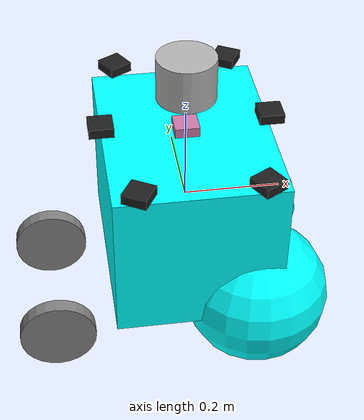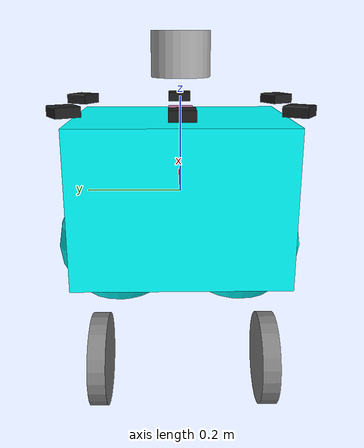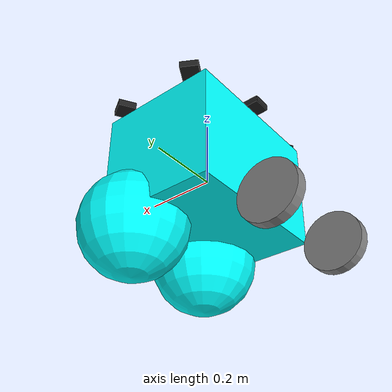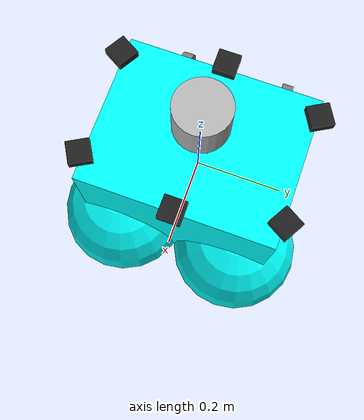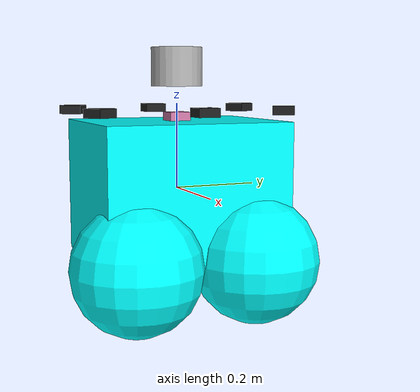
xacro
<?xml version="1.0"?>

<robot name="sam_bot" xmlns:xacro="http://ros.org/wiki/xacro">

  <!-- Define robot constants -->

  <xacro:property name="base_width" value="0.44"/>
  <xacro:property name="base_length" value="0.34"/>
  <xacro:property name="base_height" value="0.32"/>

  <xacro:property name="wheel_radius" value="0.08"/>
  <xacro:property name="wheel_width" value="0.03"/>
  <xacro:property name="wheel_ygap" value="0.075"/>
  <xacro:property name="wheel_zoff" value="0.23"/>
  <xacro:property name="wheel_xoff" value="0.29"/>

  <xacro:property name="caster_xoff" value="0.13"/>

  <!-- Define some commonly used intertial properties  -->
  <xacro:macro name="box_inertia" params="m w h d">
    <inertial>
      <origin xyz="0 0 0" rpy="${pi/2} 0 ${pi/2}"/>
      <mass value="${m}"/>
      <inertia ixx="${(m/12) * (h*h + d*d)}" ixy="0.0" ixz="0.0" iyy="${(m/12) * (w*w + d*d)}" iyz="0.0" izz="${(m/12) * (w*w + h*h)}"/>
    </inertial>
  </xacro:macro>

  <xacro:macro name="cylinder_inertia" params="m r h">
    <inertial>
      <origin xyz="0 0 0" rpy="${pi/2} 0 0" />
      <mass value="${m}"/>
      <inertia ixx="${(m/12) * (3*r*r + h*h)}" ixy = "0" ixz = "0" iyy="${(m/12) * (3*r*r + h*h)}" iyz = "0" izz="${(m/2) * (r*r)}"/>
    </inertial>
  </xacro:macro>

  <xacro:macro name="sphere_inertia" params="m r">
    <inertial>
      <mass value="${m}"/>
      <inertia ixx="${(2/5) * m * (r*r)}" ixy="0.0" ixz="0.0" iyy="${(2/5) * m * (r*r)}" iyz="0.0" izz="${(2/5) * m * (r*r)}"/>
    </inertial>
  </xacro:macro>

  <!-- Robot Base -->
  <link name="base_link">
    <visual>
      <geometry>
        <box size="${base_length} ${base_width} ${base_height}"/>
      </geometry>
      <origin xyz="0 0 0"/>
      <material name="Cyan">
        <color rgba="0 1.0 1.0 1.0"/>
      </material>
    </visual>

    <collision>
      <geometry>
        <box size="${base_length} ${base_width} ${base_height}"/>
      </geometry>
      <origin xyz="0 0 0"/>
    </collision>

    <xacro:box_inertia m="1" w="${base_width}" d="${base_length}" h="${base_height}"/>
  </link>

   <!-- Robot Footprint -->
  <link name="base_footprint">
  	<xacro:box_inertia m="0" w="0" d="0" h="0"/>
  </link>

  <joint name="base_joint" type="fixed">
    <parent link="base_link"/>
    <child link="base_footprint"/>
    <origin xyz="0.0 0.0 ${-(wheel_radius+wheel_zoff)}" rpy="0 0 0"/>
  </joint>

  <!-- Wheels -->
  <xacro:macro name="wheel" params="prefix x_reflect y_reflect">
    <link name="${prefix}_link">
      <visual>
        <origin xyz="0 0 0" rpy="${pi/2} 0 0"/>
        <geometry>
            <cylinder radius="${wheel_radius}" length="${wheel_width}"/>
        </geometry>
        <material name="Gray">
          <color rgba="0.5 0.5 0.5 1.0"/>
        </material>
      </visual>

      <collision>
        <origin xyz="0 0 0" rpy="${pi/2} 0 0"/>
        <geometry>
          <cylinder radius="${wheel_radius}" length="${wheel_width}"/>
        </geometry>
      </collision>

      <xacro:cylinder_inertia m="1.5" r="${wheel_radius}" h="${wheel_width}"/>
    </link>

    <joint name="${prefix}_joint" type="continuous">
      <parent link="base_link"/>
      <child link="${prefix}_link"/>
      <origin xyz="${x_reflect*wheel_xoff} ${y_reflect*(base_width/2-wheel_ygap)} ${-wheel_zoff}" rpy="0 0 0"/>
      <axis xyz="0 1 0"/>
    </joint>
  </xacro:macro>

  <xacro:wheel prefix="left_wheel" x_reflect="-1" y_reflect="1" />
  <xacro:wheel prefix="right_wheel" x_reflect="-1" y_reflect="-1" />

    <!-- caster -->

    <link name="left_front_caster">
      <visual>
        <geometry>
          <sphere radius="${(wheel_radius + wheel_zoff - (base_height / 2))}"/>
        </geometry>
        <material name="Cyan">
          <color rgba="0 1.0 1.0 1.0"/>
        </material>
      </visual>

      <collision>
        <origin xyz="0 0 0" rpy="0 0 0"/>
        <geometry>
          <sphere radius="${(wheel_radius + wheel_zoff - (base_height / 2))}"/>
        </geometry>
      </collision>

      <xacro:sphere_inertia m="0.5" r="${(wheel_radius + wheel_zoff - (base_height / 2))}"/>
    </link>

    <!-- 右前万向轮 -->
    <link name="right_front_caster">
      <visual>
        <geometry>
          <sphere radius="${(wheel_radius + wheel_zoff - (base_height / 2))}"/>
        </geometry>
        <material name="Cyan">
          <color rgba="0 1.0 1.0 1.0"/>
        </material>
      </visual>

      <collision>
        <origin xyz="0 0 0" rpy="0 0 0"/>
        <geometry>
          <sphere radius="${(wheel_radius + wheel_zoff - (base_height / 2))}"/>
        </geometry>
      </collision>

      <xacro:sphere_inertia m="0.5" r="${(wheel_radius + wheel_zoff - (base_height / 2))}"/>
    </link>

    <!-- 前万向轮关节 -->
    <joint name="left_front_caster_joint" type="fixed">
      <parent link="base_link"/>
      <child link="left_front_caster"/>
      <origin xyz="${caster_xoff} ${base_width / 2 - wheel_ygap} ${-(base_height / 2)}" rpy="0 0 0"/>
      <axis xyz="0 1 0"/>  <!-- 旋转轴 -->
    </joint>

    <joint name="right_front_caster_joint" type="fixed">
      <parent link="base_link"/>
      <child link="right_front_caster"/>
      <origin xyz="${caster_xoff} ${-(base_width / 2 - wheel_ygap)} ${-(base_height / 2)}" rpy="0 0 0"/>
      <axis xyz="0 1 0"/>  <!-- 旋转轴 -->
    </joint>

  <link name="imu_link">
    <visual>
      <geometry>
        <box size="0.05 0.05 0.02"/>
      </geometry>
    </visual>

    <collision>
      <geometry>
        <box size="0.05 0.05 0.02"/>
      </geometry>
    </collision>

    <xacro:box_inertia m="0.05" w="0.05" d="0.05" h="0.02"/>
  </link>

  <joint name="imu_joint" type="fixed">
    <parent link="base_link"/>
    <child link="imu_link"/>
    <origin xyz="0 0 0.17" rpy="0 0 0"/>
  </joint>

  <gazebo reference="imu_link">
  <sensor name="imu_sensor" type="imu">
   <plugin filename="libgazebo_ros_imu_sensor.so" name="imu_plugin">
      <ros>
        <namespace>/demo</namespace>
        <remapping>~/out:=imu</remapping>
      </ros>
      <initial_orientation_as_reference>false</initial_orientation_as_reference>
    </plugin>
    <always_on>true</always_on>
    <update_rate>100</update_rate>
    <visualize>true</visualize>
    <imu>
      <angular_velocity>
        <x>
          <noise type="gaussian">
            <mean>0.0</mean>      <bias_stddev>0.001</bias_stddev>
            <stddev>2e-4</stddev>
            <bias_mean>0.0000075</bias_mean>
            <bias_stddev>0.0000008</bias_stddev>
          </noise>
        </x>
        <y>
          <noise type="gaussian">
            <mean>0.0</mean>
            <stddev>2e-4</stddev>
            <bias_mean>0.0000075</bias_mean>
            <bias_stddev>0.0000008</bias_stddev>
          </noise>
        </y>
        <z>
          <noise type="gaussian">
            <mean>0.0</mean>
            <stddev>2e-4</stddev>
            <bias_mean>0.0000075</bias_mean>
            <bias_stddev>0.0000008</bias_stddev>
          </noise>
        </z>
      </angular_velocity>
      <linear_acceleration>
        <x>
          <noise type="gaussian">
            <mean>0.0</mean>
            <stddev>1.7e-2</stddev>
            <bias_mean>0.1</bias_mean>
            <bias_stddev>0.001</bias_stddev>
          </noise>
        </x>
        <y>
          <noise type="gaussian">
            <mean>0.0</mean>
            <stddev>1.7e-2</stddev>
            <bias_mean>0.1</bias_mean>
            <bias_stddev>0.001</bias_stddev>
          </noise>
        </y>
        <z>
          <noise type="gaussian">
            <mean>0.0</mean>
            <stddev>1.7e-2</stddev>
            <bias_mean>0.1</bias_mean>
          </noise>
        </z>
      </linear_acceleration>
    </imu>
  </sensor>
</gazebo>

 <link name="lidar_link">
    <inertial>
      <origin xyz="0 0 0" rpy="0 0 0"/>
      <mass value="0.125"/>
      <inertia ixx="0.001"  ixy="0"  ixz="0" iyy="0.001" iyz="0" izz="0.001" />
    </inertial>

    <collision>
      <origin xyz="0 0 0" rpy="0 0 0"/>
      <geometry>
         <cylinder radius="0.06" length="0.09"/>
      </geometry>
    </collision>

    <visual>
      <origin xyz="0 0 0" rpy="0 0 0"/>
      <geometry>
         <cylinder radius="0.06" length="0.09"/>
      </geometry>
    </visual>
  </link>

  <joint name="lidar_joint" type="fixed">
    <parent link="base_link"/>
    <child link="lidar_link"/>
    <origin xyz="0 0 0.285" rpy="0 0 0"/>
  </joint>

  <gazebo reference="lidar_link">
    <sensor name="lidar" type="ray">
      <always_on>true</always_on>
      <visualize>true</visualize>
      <update_rate>5</update_rate>
      <ray>
        <scan>
          <horizontal>
            <samples>360</samples>
            <resolution>1.000000</resolution>
            <min_angle>0.000000</min_angle>
            <max_angle>6.280000</max_angle>
          </horizontal>
        </scan>
        <range>
          <min>0.120000</min>
          <max>3.5</max>
          <resolution>0.015000</resolution>
        </range>
        <noise>
          <type>gaussian</type>
          <mean>0.0</mean>
          <stddev>0.01</stddev>
        </noise>
      </ray>
      <plugin name="scan" filename="libgazebo_ros_ray_sensor.so">
        <ros>
          <remapping>~/out:=scan</remapping>
        </ros>
        <output_type>sensor_msgs/LaserScan</output_type>
        <frame_name>lidar_link</frame_name>
      </plugin>
    </sensor>
  </gazebo>

  <!-- Camera Front -->
  <link name="CAM_FRONT">
    <visual>
      <geometry>
        <box size="0.05 0.05 0.02"/>
      </geometry>
      <material name="black"/>
    </visual>
    <collision>
      <geometry>
        <box size="0.05 0.05 0.02"/>
      </geometry>
    </collision>
    <inertial>
      <mass value="0.05"/>
      <inertia ixx="0.0001" ixy="0.0" ixz="0.0" iyy="0.0001" iyz="0.0" izz="0.0001"/>
    </inertial>
  </link>
  <joint name="CAM_FRONT_joint" type="fixed">
    <parent link="base_link"/>
    <child link="CAM_FRONT"/>
    <origin xyz="0.17 0.0 0.185" rpy="0 0 0"/>
  </joint>

  <!-- Camera Front Right -->
  <link name="CAM_FRONT_LEFT">
    <visual>
      <geometry>
        <box size="0.05 0.05 0.02"/>
      </geometry>
      <material name="black"/>
    </visual>
    <collision>
      <geometry>
        <box size="0.05 0.05 0.02"/>
      </geometry>
    </collision>
    <inertial>
      <mass value="0.05"/>
      <inertia ixx="0.0001" ixy="0.0" ixz="0.0" iyy="0.0001" iyz="0.0" izz="0.0001"/>
    </inertial>
  </link>
  <joint name="CAM_FRONT_LEFT_joint" type="fixed">
    <parent link="base_link"/>
    <child link="CAM_FRONT_LEFT"/>
    <origin xyz="0.12 0.22 0.185" rpy="0 0 1.0472"/>
  </joint>

  <!-- Camera Back Right -->
  <link name="CAM_BACK_LEFT">
    <visual>
      <geometry>
        <box size="0.05 0.05 0.02"/>
      </geometry>
      <material name="black"/>
    </visual>
    <collision>
      <geometry>
        <box size="0.05 0.05 0.02"/>
      </geometry>
    </collision>
    <inertial>
      <mass value="0.05"/>
      <inertia ixx="0.0001" ixy="0.0" ixz="0.0" iyy="0.0001" iyz="0.0" izz="0.0001"/>
    </inertial>
  </link>
  <joint name="CAM_BACK_LEFT_joint" type="fixed">
    <parent link="base_link"/>
    <child link="CAM_BACK_LEFT"/>
    <origin xyz="-0.12 0.22 0.185" rpy="0 0 2.0944"/>
  </joint>

  <!-- Camera Back -->
  <link name="CAM_BACK">
    <visual>
      <geometry>
        <box size="0.05 0.05 0.02"/>
      </geometry>
      <material name="black"/>
    </visual>
    <collision>
      <geometry>
        <box size="0.05 0.05 0.02"/>
      </geometry>
    </collision>
    <inertial>
      <mass value="0.05"/>
      <inertia ixx="0.0001" ixy="0.0" ixz="0.0" iyy="0.0001" iyz="0.0" izz="0.0001"/>
    </inertial>
  </link>
  <joint name="CAM_BACK_joint" type="fixed">
    <parent link="base_link"/>
    <child link="CAM_BACK"/>
    <origin xyz="-0.17 0.0 0.185" rpy="0 0 3.1416"/>
  </joint>

  <!-- Camera Back Left -->
  <link name="CAM_BACK_RIGHT">
    <visual>
      <geometry>
        <box size="0.05 0.05 0.02"/>
      </geometry>
      <material name="black"/>
    </visual>
    <collision>
      <geometry>
        <box size="0.05 0.05 0.02"/>
      </geometry>
    </collision>
    <inertial>
      <mass value="0.05"/>
      <inertia ixx="0.0001" ixy="0.0" ixz="0.0" iyy="0.0001" iyz="0.0" izz="0.0001"/>
    </inertial>
  </link>
  <joint name="CAM_BACK_RIGHT_joint" type="fixed">
    <parent link="base_link"/>
    <child link="CAM_BACK_RIGHT"/>
    <origin xyz="-0.12 -0.22 0.185" rpy="0 0 -2.0944"/>
  </joint>

  <!-- Camera Front Left -->
  <link name="CAM_FRONT_RIGHT">
    <visual>
      <geometry>
        <box size="0.05 0.05 0.02"/>
      </geometry>
      <material name="black"/>
    </visual>
    <collision>
      <geometry>
        <box size="0.05 0.05 0.02"/>
      </geometry>
    </collision>
    <inertial>
      <mass value="0.05"/>
      <inertia ixx="0.0001" ixy="0.0" ixz="0.0" iyy="0.0001" iyz="0.0" izz="0.0001"/>
    </inertial>
  </link>
  <joint name="CAM_FRONT_RIGHT_joint" type="fixed">
    <parent link="base_link"/>
    <child link="CAM_FRONT_RIGHT"/>
    <origin xyz="0.12 -0.22 0.185" rpy="0 0 -1.0472"/>
  </joint>

</robot>
